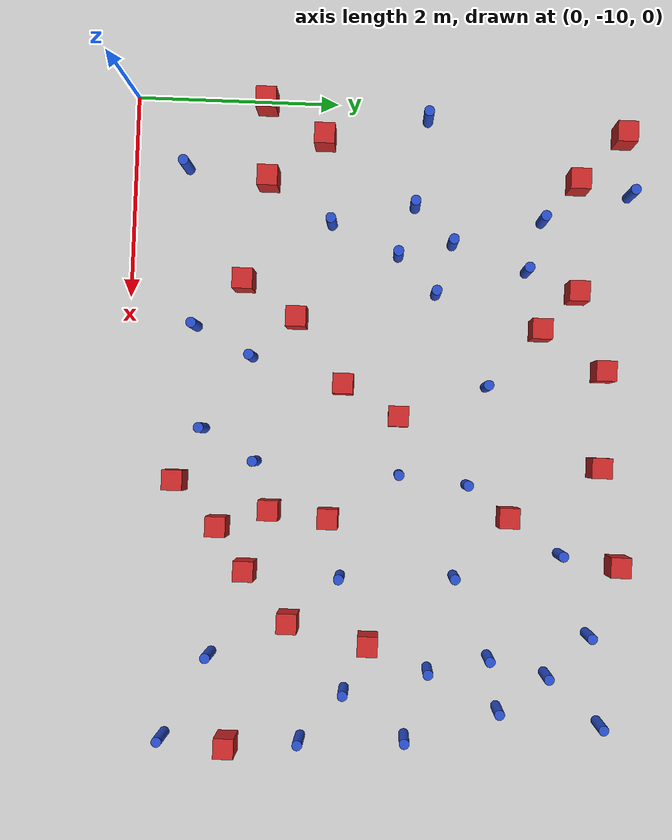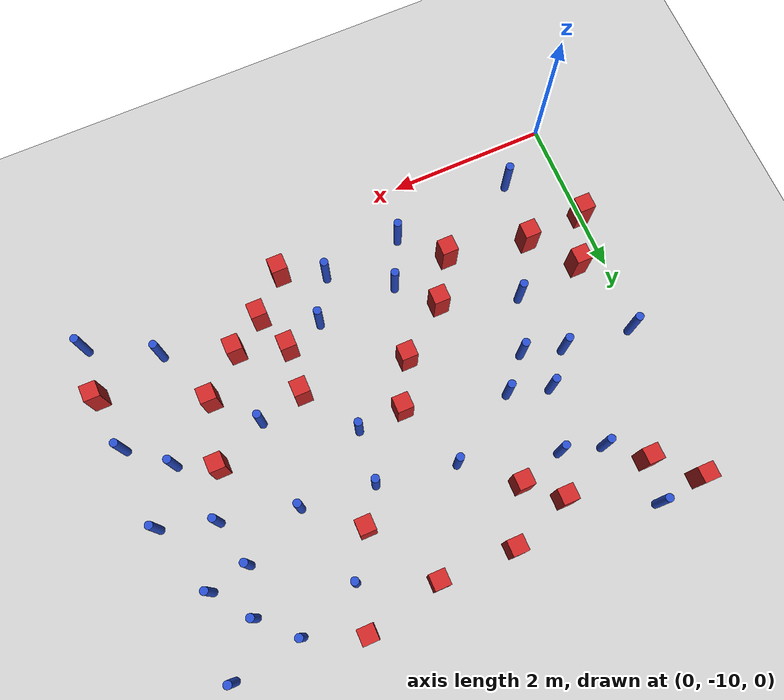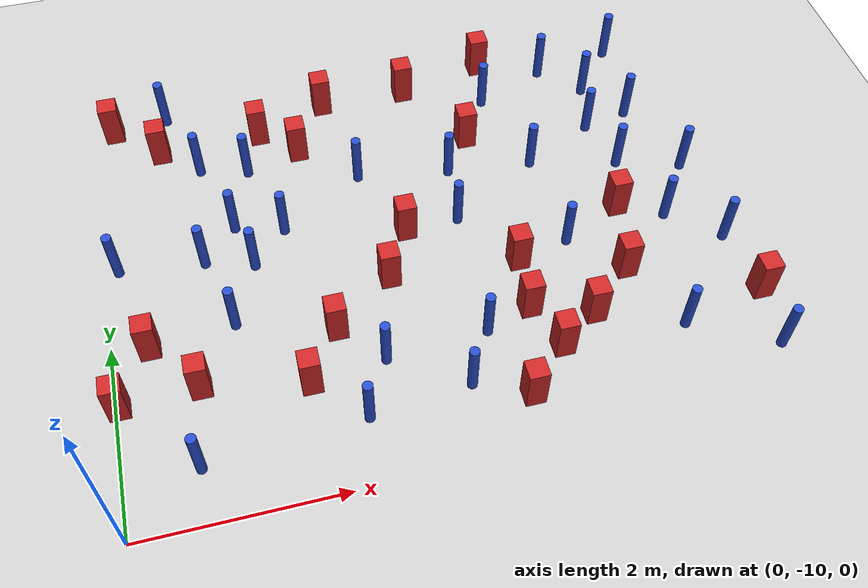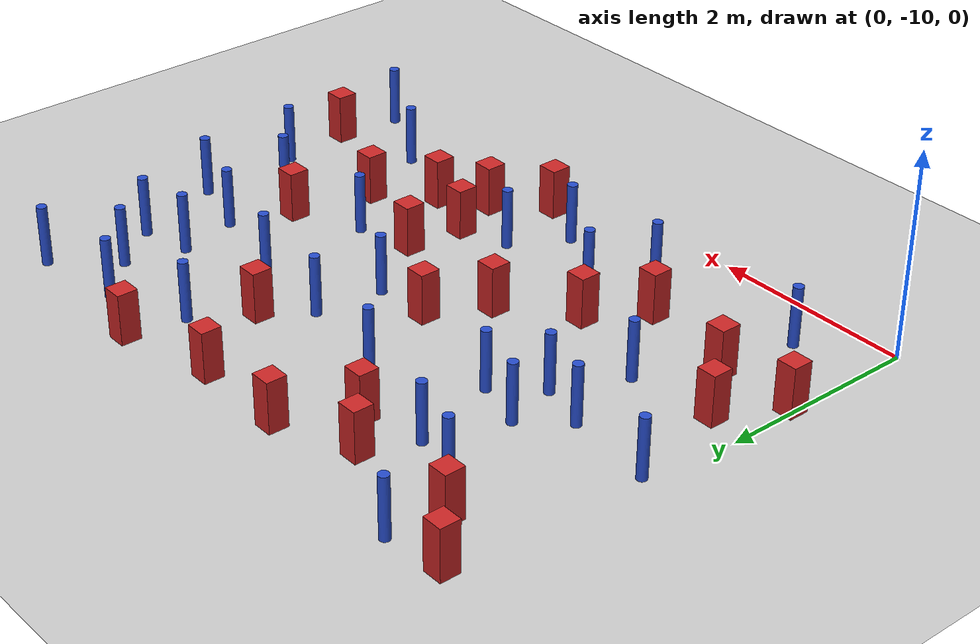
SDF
<sdf version="1.6">
 <world name="default">
  <model name="ground_plane">
   <static>1</static>
   <link name="link">
    <collision name="collision">
     <geometry><plane><normal>0 0 1</normal><size>100 100</size></plane></geometry>
     <surface><friction><ode><mu>100</mu><mu2>50</mu2></ode></friction></surface>
    </collision>
    <visual name="visual">
     <cast_shadows>0</cast_shadows>
     <geometry><plane><normal>0 0 1</normal><size>100 100</size></plane></geometry>
     <material>
      <ambient>1.0 1.0 1.0 1.0</ambient>
      <diffuse>0.8 0.8 0.8 1.0</diffuse>
      <specular>0.01 0.01 0.01 1.000000</specular>
     </material>
    </visual>
   </link>
  </model>
  <model name="pole_obstacle2">
   <static>true</static>
   <pose>5.58116646436 -6.90500801666 7.38925637345e-09 -8.47170692796e-08 1.24976764786e-08 -1.74513093032e-07</pose>
   <link name="link">
    <pose>0 0 0.3 0 -0 0</pose>
    <inertial>
     <mass>1</mass>
     <inertia><ixx>0.145833</ixx><ixy>0</ixy><ixz>0</ixz><iyy>0.145833</iyy><iyz>0</iyz><izz>0.125</izz></inertia>
    </inertial>
    <collision name="collision">
     <geometry><cylinder><radius>0.05</radius><length>.6</length></cylinder></geometry>
    </collision>
    <visual name="visual">
     <geometry><cylinder><radius>0.05</radius><length>.6</length></cylinder></geometry>
     <material>
      <script><name>Gazebo/Blue</name><uri>file://media/materials/scripts/gazebo.material</uri></script>
     </material>
    </visual>
   </link>
  </model>
  <model name="pole_obstacle7">
   <static>true</static>
   <pose>5.17682240041 -5.33551856168 7.38925637345e-09 -8.47170692796e-08 1.24976764786e-08 -1.74513093032e-07</pose>
   <link name="link">
    <pose>0 0 0.3 0 -0 0</pose>
    <inertial>
     <mass>1</mass>
     <inertia><ixx>0.145833</ixx><ixy>0</ixy><ixz>0</ixz><iyy>0.145833</iyy><iyz>0</iyz><izz>0.125</izz></inertia>
    </inertial>
    <collision name="collision">
     <geometry><cylinder><radius>0.05</radius><length>.6</length></cylinder></geometry>
    </collision>
    <visual name="visual">
     <geometry><cylinder><radius>0.05</radius><length>.6</length></cylinder></geometry>
     <material>
      <script><name>Gazebo/Blue</name><uri>file://media/materials/scripts/gazebo.material</uri></script>
     </material>
    </visual>
   </link>
  </model>
  <model name="pole_obstacle9">
   <static>true</static>
   <pose>5.81578536251 -7.72304774756 7.38925637345e-09 -8.47170692796e-08 1.24976764786e-08 -1.74513093032e-07</pose>
   <link name="link">
    <pose>0 0 0.3 0 -0 0</pose>
    <inertial>
     <mass>1</mass>
     <inertia><ixx>0.145833</ixx><ixy>0</ixy><ixz>0</ixz><iyy>0.145833</iyy><iyz>0</iyz><izz>0.125</izz></inertia>
    </inertial>
    <collision name="collision">
     <geometry><cylinder><radius>0.05</radius><length>.6</length></cylinder></geometry>
    </collision>
    <visual name="visual">
     <geometry><cylinder><radius>0.05</radius><length>.6</length></cylinder></geometry>
     <material>
      <script><name>Gazebo/Blue</name><uri>file://media/materials/scripts/gazebo.material</uri></script>
     </material>
    </visual>
   </link>
  </model>
  <model name="pole_obstacle12">
   <static>true</static>
   <pose>3.67191027739 -7.25729127321 7.38925637345e-09 -8.47170692798e-08 1.24976765033e-08 -1.74513093019e-07</pose>
   <link name="link">
    <pose>0 0 0.3 0 -0 0</pose>
    <inertial>
     <mass>1</mass>
     <inertia><ixx>0.145833</ixx><ixy>0</ixy><ixz>0</ixz><iyy>0.145833</iyy><iyz>0</iyz><izz>0.125</izz></inertia>
    </inertial>
    <collision name="collision">
     <geometry><cylinder><radius>0.05</radius><length>.6</length></cylinder></geometry>
    </collision>
    <visual name="visual">
     <geometry><cylinder><radius>0.05</radius><length>.6</length></cylinder></geometry>
     <material>
      <script><name>Gazebo/Blue</name><uri>file://media/materials/scripts/gazebo.material</uri></script>
     </material>
    </visual>
   </link>
  </model>
  <model name="pole_obstacle21">
   <static>true</static>
   <pose>1.87104269473 -6.96091129743 7.38925637345e-09 -8.47170692799e-08 1.24976765033e-08 -1.74513093018e-07</pose>
   <link name="link">
    <pose>0 0 0.3 0 -0 0</pose>
    <inertial>
     <mass>1</mass>
     <inertia><ixx>0.145833</ixx><ixy>0</ixy><ixz>0</ixz><iyy>0.145833</iyy><iyz>0</iyz><izz>0.125</izz></inertia>
    </inertial>
    <collision name="collision">
     <geometry><cylinder><radius>0.05</radius><length>.6</length></cylinder></geometry>
    </collision>
    <visual name="visual">
     <geometry><cylinder><radius>0.05</radius><length>.6</length></cylinder></geometry>
     <material>
      <script><name>Gazebo/Blue</name><uri>file://media/materials/scripts/gazebo.material</uri></script>
     </material>
    </visual>
   </link>
  </model>
  <model name="square_post_obstacle33">
   <static>true</static>
   <pose>3.53055788666 -5.28912433252 1.91545236811e-07 -7.35059704564e-06 1.12565212e-07 2.39332434364e-05</pose>
   <link name="link">
    <pose>0 0 0.25 0 -0 0</pose>
    <inertial>
     <mass>100</mass>
     <inertia>
      <ixx>0.166667</ixx>
      <ixy>0</ixy>
      <ixz>0</ixz>
      <iyy>0.166667</iyy>
      <iyz>0</iyz>
      <izz>0.166667</izz>
     </inertia>
    </inertial>
    <collision name="collision"><geometry><box><size>.2 .2 .5</size></box></geometry></collision>
    <visual name="visual">
     <geometry><box><size>.2 .2 .5</size></box></geometry>
     <material>
      <script><name>Gazebo/Red</name><uri>file://media/materials/scripts/gazebo.material</uri></script>
     </material>
    </visual>
   </link>
  </model>
  <model name="pole_obstacle37">
   <static>true</static>
   <pose>1.36823733643 -6.81389044042 7.38925637345e-09 -8.47170692799e-08 1.24976765033e-08 -1.74513093018e-07</pose>
   <link name="link">
    <pose>0 0 0.3 0 -0 0</pose>
    <inertial>
     <mass>1</mass>
     <inertia><ixx>0.145833</ixx><ixy>0</ixy><ixz>0</ixz><iyy>0.145833</iyy><iyz>0</iyz><izz>0.125</izz></inertia>
    </inertial>
    <collision name="collision">
     <geometry><cylinder><radius>0.05</radius><length>.6</length></cylinder></geometry>
    </collision>
    <visual name="visual">
     <geometry><cylinder><radius>0.05</radius><length>.6</length></cylinder></geometry>
     <material>
      <script><name>Gazebo/Blue</name><uri>file://media/materials/scripts/gazebo.material</uri></script>
     </material>
    </visual>
   </link>
  </model>
  <model name="square_post_obstacle41">
   <static>true</static>
   <pose>0.240563237475 -5.1569229616 1.91545236811e-07 -7.35059704564e-06 1.12565212e-07 2.39332434364e-05</pose>
   <link name="link">
    <pose>0 0 0.25 0 -0 0</pose>
    <inertial>
     <mass>100</mass>
     <inertia>
      <ixx>0.166667</ixx>
      <ixy>0</ixy>
      <ixz>0</ixz>
      <iyy>0.166667</iyy>
      <iyz>0</iyz>
      <izz>0.166667</izz>
     </inertia>
    </inertial>
    <collision name="collision"><geometry><box><size>.2 .2 .5</size></box></geometry></collision>
    <visual name="visual">
     <geometry><box><size>.2 .2 .5</size></box></geometry>
     <material>
      <script><name>Gazebo/Red</name><uri>file://media/materials/scripts/gazebo.material</uri></script>
     </material>
    </visual>
   </link>
  </model>
  <model name="square_post_obstacle45">
   <static>true</static>
   <pose>2.16445532617 -8.32171729761 1.91545236811e-07 -7.35059704564e-06 1.12565212e-07 2.39332434364e-05</pose>
   <link name="link">
    <pose>0 0 0.25 0 -0 0</pose>
    <inertial>
     <mass>100</mass>
     <inertia>
      <ixx>0.166667</ixx>
      <ixy>0</ixy>
      <ixz>0</ixz>
      <iyy>0.166667</iyy>
      <iyz>0</iyz>
      <izz>0.166667</izz>
     </inertia>
    </inertial>
    <collision name="collision"><geometry><box><size>.2 .2 .5</size></box></geometry></collision>
    <visual name="visual">
     <geometry><box><size>.2 .2 .5</size></box></geometry>
     <material>
      <script><name>Gazebo/Red</name><uri>file://media/materials/scripts/gazebo.material</uri></script>
     </material>
    </visual>
   </link>
  </model>
  <model name="pole_obstacle48">
   <static>true</static>
   <pose>1.20997205393 -8.01390607306 7.38925637345e-09 -8.47170692794e-08 1.24976764551e-08 -1.74513093044e-07</pose>
   <link name="link">
    <pose>0 0 0.3 0 -0 0</pose>
    <inertial>
     <mass>1</mass>
     <inertia><ixx>0.145833</ixx><ixy>0</ixy><ixz>0</ixz><iyy>0.145833</iyy><iyz>0</iyz><izz>0.125</izz></inertia>
    </inertial>
    <collision name="collision">
     <geometry><cylinder><radius>0.05</radius><length>.6</length></cylinder></geometry>
    </collision>
    <visual name="visual">
     <geometry><cylinder><radius>0.05</radius><length>.6</length></cylinder></geometry>
     <material>
      <script><name>Gazebo/Blue</name><uri>file://media/materials/scripts/gazebo.material</uri></script>
     </material>
    </visual>
   </link>
  </model>
  <model name="pole_obstacle51">
   <static>true</static>
   <pose>4.65511370809 -6.67889860376 7.38925637345e-09 -8.47170692796e-08 1.24976764786e-08 -1.74513093032e-07</pose>
   <link name="link">
    <pose>0 0 0.3 0 -0 0</pose>
    <inertial>
     <mass>1</mass>
     <inertia><ixx>0.145833</ixx><ixy>0</ixy><ixz>0</ixz><iyy>0.145833</iyy><iyz>0</iyz><izz>0.125</izz></inertia>
    </inertial>
    <collision name="collision">
     <geometry><cylinder><radius>0.05</radius><length>.6</length></cylinder></geometry>
    </collision>
    <visual name="visual">
     <geometry><cylinder><radius>0.05</radius><length>.6</length></cylinder></geometry>
     <material>
      <script><name>Gazebo/Blue</name><uri>file://media/materials/scripts/gazebo.material</uri></script>
     </material>
    </visual>
   </link>
  </model>
  <model name="pole_obstacle52">
   <static>true</static>
   <pose>1.61405642815 -6.07192503614 7.38925637345e-09 -8.47170692799e-08 1.24976765033e-08 -1.74513093018e-07</pose>
   <link name="link">
    <pose>0 0 0.3 0 -0 0</pose>
    <inertial>
     <mass>1</mass>
     <inertia><ixx>0.145833</ixx><ixy>0</ixy><ixz>0</ixz><iyy>0.145833</iyy><iyz>0</iyz><izz>0.125</izz></inertia>
    </inertial>
    <collision name="collision">
     <geometry><cylinder><radius>0.05</radius><length>.6</length></cylinder></geometry>
    </collision>
    <visual name="visual">
     <geometry><cylinder><radius>0.05</radius><length>.6</length></cylinder></geometry>
     <material>
      <script><name>Gazebo/Blue</name><uri>file://media/materials/scripts/gazebo.material</uri></script>
     </material>
    </visual>
   </link>
  </model>
  <model name="square_post_obstacle61">
   <static>true</static>
   <pose>5.34747033582 -7.50090982426 1.91545236811e-07 -7.35059704564e-06 1.12565212e-07 2.39332434364e-05</pose>
   <link name="link">
    <pose>0 0 0.25 0 -0 0</pose>
    <inertial>
     <mass>100</mass>
     <inertia>
      <ixx>0.166667</ixx>
      <ixy>0</ixy>
      <ixz>0</ixz>
      <iyy>0.166667</iyy>
      <iyz>0</iyz>
      <izz>0.166667</izz>
     </inertia>
    </inertial>
    <collision name="collision"><geometry><box><size>.2 .2 .5</size></box></geometry></collision>
    <visual name="visual">
     <geometry><box><size>.2 .2 .5</size></box></geometry>
     <material>
      <script><name>Gazebo/Red</name><uri>file://media/materials/scripts/gazebo.material</uri></script>
     </material>
    </visual>
   </link>
  </model>
  <model name="pole_obstacle58">
   <static>true</static>
   <pose>2.77067635116 -6.4252747511 7.38925637345e-09 -8.47170692798e-08 1.24976765033e-08 -1.74513093019e-07</pose>
   <link name="link">
    <pose>0 0 0.3 0 -0 0</pose>
    <inertial>
     <mass>1</mass>
     <inertia><ixx>0.145833</ixx><ixy>0</ixy><ixz>0</ixz><iyy>0.145833</iyy><iyz>0</iyz><izz>0.125</izz></inertia>
    </inertial>
    <collision name="collision">
     <geometry><cylinder><radius>0.05</radius><length>.6</length></cylinder></geometry>
    </collision>
    <visual name="visual">
     <geometry><cylinder><radius>0.05</radius><length>.6</length></cylinder></geometry>
     <material>
      <script><name>Gazebo/Blue</name><uri>file://media/materials/scripts/gazebo.material</uri></script>
     </material>
    </visual>
   </link>
  </model>
  <model name="pole_obstacle67">
   <static>true</static>
   <pose>3.7478950699 -6.58423467968 7.38925637345e-09 -8.47170692798e-08 1.24976765033e-08 -1.74513093019e-07</pose>
   <link name="link">
    <pose>0 0 0.3 0 -0 0</pose>
    <inertial>
     <mass>1</mass>
     <inertia><ixx>0.145833</ixx><ixy>0</ixy><ixz>0</ixz><iyy>0.145833</iyy><iyz>0</iyz><izz>0.125</izz></inertia>
    </inertial>
    <collision name="collision">
     <geometry><cylinder><radius>0.05</radius><length>.6</length></cylinder></geometry>
    </collision>
    <visual name="visual">
     <geometry><cylinder><radius>0.05</radius><length>.6</length></cylinder></geometry>
     <material>
      <script><name>Gazebo/Blue</name><uri>file://media/materials/scripts/gazebo.material</uri></script>
     </material>
    </visual>
   </link>
  </model>
  <model name="square_post_obstacle72">
   <static>true</static>
   <pose>4.12764143469 -7.93884715635 1.91545236811e-07 -7.35059704564e-06 1.12565212e-07 2.39332434364e-05</pose>
   <link name="link">
    <pose>0 0 0.25 0 -0 0</pose>
    <inertial>
     <mass>100</mass>
     <inertia>
      <ixx>0.166667</ixx>
      <ixy>0</ixy>
      <ixz>0</ixz>
      <iyy>0.166667</iyy>
      <iyz>0</iyz>
      <izz>0.166667</izz>
     </inertia>
    </inertial>
    <collision name="collision"><geometry><box><size>.2 .2 .5</size></box></geometry></collision>
    <visual name="visual">
     <geometry><box><size>.2 .2 .5</size></box></geometry>
     <material>
      <script><name>Gazebo/Red</name><uri>file://media/materials/scripts/gazebo.material</uri></script>
     </material>
    </visual>
   </link>
  </model>
  <model name="pole_obstacle72">
   <static>true</static>
   <pose>6.04989582428 -5.19460261238 7.38925637345e-09 -8.47170692796e-08 1.24976764786e-08 -1.74513093032e-07</pose>
   <link name="link">
    <pose>0 0 0.3 0 -0 0</pose>
    <inertial>
     <mass>1</mass>
     <inertia><ixx>0.145833</ixx><ixy>0</ixy><ixz>0</ixz><iyy>0.145833</iyy><iyz>0</iyz><izz>0.125</izz></inertia>
    </inertial>
    <collision name="collision">
     <geometry><cylinder><radius>0.05</radius><length>.6</length></cylinder></geometry>
    </collision>
    <visual name="visual">
     <geometry><cylinder><radius>0.05</radius><length>.6</length></cylinder></geometry>
     <material>
      <script><name>Gazebo/Blue</name><uri>file://media/materials/scripts/gazebo.material</uri></script>
     </material>
    </visual>
   </link>
  </model>
  <model name="pole_obstacle81">
   <static>true</static>
   <pose>6.32546712629 -9.49495715269 7.38925637345e-09 -8.471706928e-08 1.24976765081e-08 -1.74513093015e-07</pose>
   <link name="link">
    <pose>0 0 0.3 0 -0 0</pose>
    <inertial>
     <mass>1</mass>
     <inertia><ixx>0.145833</ixx><ixy>0</ixy><ixz>0</ixz><iyy>0.145833</iyy><iyz>0</iyz><izz>0.125</izz></inertia>
    </inertial>
    <collision name="collision">
     <geometry><cylinder><radius>0.05</radius><length>.6</length></cylinder></geometry>
    </collision>
    <visual name="visual">
     <geometry><cylinder><radius>0.05</radius><length>.6</length></cylinder></geometry>
     <material>
      <script><name>Gazebo/Blue</name><uri>file://media/materials/scripts/gazebo.material</uri></script>
     </material>
    </visual>
   </link>
  </model>
  <model name="pole_obstacle85">
   <static>true</static>
   <pose>4.39669901683 -5.6426793888 7.38925637345e-09 -8.47170692796e-08 1.24976764786e-08 -1.74513093032e-07</pose>
   <link name="link">
    <pose>0 0 0.3 0 -0 0</pose>
    <inertial>
     <mass>1</mass>
     <inertia><ixx>0.145833</ixx><ixy>0</ixy><ixz>0</ixz><iyy>0.145833</iyy><iyz>0</iyz><izz>0.125</izz></inertia>
    </inertial>
    <collision name="collision">
     <geometry><cylinder><radius>0.05</radius><length>.6</length></cylinder></geometry>
    </collision>
    <visual name="visual">
     <geometry><cylinder><radius>0.05</radius><length>.6</length></cylinder></geometry>
     <material>
      <script><name>Gazebo/Blue</name><uri>file://media/materials/scripts/gazebo.material</uri></script>
     </material>
    </visual>
   </link>
  </model>
  <model name="pole_obstacle88">
   <static>true</static>
   <pose>5.50503893143 -9.05986063166 7.38925637345e-09 -8.471706928e-08 1.24976765081e-08 -1.74513093015e-07</pose>
   <link name="link">
    <pose>0 0 0.3 0 -0 0</pose>
    <inertial>
     <mass>1</mass>
     <inertia><ixx>0.145833</ixx><ixy>0</ixy><ixz>0</ixz><iyy>0.145833</iyy><iyz>0</iyz><izz>0.125</izz></inertia>
    </inertial>
    <collision name="collision">
     <geometry><cylinder><radius>0.05</radius><length>.6</length></cylinder></geometry>
    </collision>
    <visual name="visual">
     <geometry><cylinder><radius>0.05</radius><length>.6</length></cylinder></geometry>
     <material>
      <script><name>Gazebo/Blue</name><uri>file://media/materials/scripts/gazebo.material</uri></script>
     </material>
    </visual>
   </link>
  </model>
  <model name="square_post_obstacle96">
   <static>true</static>
   <pose>4.06630741562 -8.52020843506 1.91545236811e-07 -7.35059704564e-06 1.12565212e-07 2.39332434364e-05</pose>
   <link name="link">
    <pose>0 0 0.25 0 -0 0</pose>
    <inertial>
     <mass>100</mass>
     <inertia>
      <ixx>0.166667</ixx>
      <ixy>0</ixy>
      <ixz>0</ixz>
      <iyy>0.166667</iyy>
      <iyz>0</iyz>
      <izz>0.166667</izz>
     </inertia>
    </inertial>
    <collision name="collision"><geometry><box><size>.2 .2 .5</size></box></geometry></collision>
    <visual name="visual">
     <geometry><box><size>.2 .2 .5</size></box></geometry>
     <material>
      <script><name>Gazebo/Red</name><uri>file://media/materials/scripts/gazebo.material</uri></script>
     </material>
    </visual>
   </link>
  </model>
  <model name="pole_obstacle109">
   <static>true</static>
   <pose>0.822252012917 -5.07539163171 7.38925637345e-09 -8.471706928e-08 1.24976765086e-08 -1.74513093015e-07</pose>
   <link name="link">
    <pose>0 0 0.3 0 -0 0</pose>
    <inertial>
     <mass>1</mass>
     <inertia><ixx>0.145833</ixx><ixy>0</ixy><ixz>0</ixz><iyy>0.145833</iyy><iyz>0</iyz><izz>0.125</izz></inertia>
    </inertial>
    <collision name="collision">
     <geometry><cylinder><radius>0.05</radius><length>.6</length></cylinder></geometry>
    </collision>
    <visual name="visual">
     <geometry><cylinder><radius>0.05</radius><length>.6</length></cylinder></geometry>
     <material>
      <script><name>Gazebo/Blue</name><uri>file://media/materials/scripts/gazebo.material</uri></script>
     </material>
    </visual>
   </link>
  </model>
  <model name="square_post_obstacle99">
   <static>true</static>
   <pose>0.371428055004 -8.10973355037 1.91545236811e-07 -7.35059704564e-06 1.12565212e-07 2.39332434364e-05</pose>
   <link name="link">
    <pose>0 0 0.25 0 -0 0</pose>
    <inertial>
     <mass>100</mass>
     <inertia>
      <ixx>0.166667</ixx>
      <ixy>0</ixy>
      <ixz>0</ixz>
      <iyy>0.166667</iyy>
      <iyz>0</iyz>
      <izz>0.166667</izz>
     </inertia>
    </inertial>
    <collision name="collision"><geometry><box><size>.2 .2 .5</size></box></geometry></collision>
    <visual name="visual">
     <geometry><box><size>.2 .2 .5</size></box></geometry>
     <material>
      <script><name>Gazebo/Red</name><uri>file://media/materials/scripts/gazebo.material</uri></script>
     </material>
    </visual>
   </link>
  </model>
  <model name="pole_obstacle117">
   <static>true</static>
   <pose>2.27341174924 -9.32356402539 7.38925637345e-09 -8.47170692793e-08 1.24976764408e-08 -1.74513093041e-07</pose>
   <link name="link">
    <pose>0 0 0.3 0 -0 0</pose>
    <inertial>
     <mass>1</mass>
     <inertia><ixx>0.145833</ixx><ixy>0</ixy><ixz>0</ixz><iyy>0.145833</iyy><iyz>0</iyz><izz>0.125</izz></inertia>
    </inertial>
    <collision name="collision">
     <geometry><cylinder><radius>0.05</radius><length>.6</length></cylinder></geometry>
    </collision>
    <visual name="visual">
     <geometry><cylinder><radius>0.05</radius><length>.6</length></cylinder></geometry>
     <material>
      <script><name>Gazebo/Blue</name><uri>file://media/materials/scripts/gazebo.material</uri></script>
     </material>
    </visual>
   </link>
  </model>
  <model name="square_post_obstacle106">
   <static>true</static>
   <pose>1.81607225525 -8.85521936287 1.91545236811e-07 -7.35059704564e-06 1.12565212e-07 2.39332434364e-05</pose>
   <link name="link">
    <pose>0 0 0.25 0 -0 0</pose>
    <inertial>
     <mass>100</mass>
     <inertia>
      <ixx>0.166667</ixx>
      <ixy>0</ixy>
      <ixz>0</ixz>
      <iyy>0.166667</iyy>
      <iyz>0</iyz>
      <izz>0.166667</izz>
     </inertia>
    </inertial>
    <collision name="collision"><geometry><box><size>.2 .2 .5</size></box></geometry></collision>
    <visual name="visual">
     <geometry><box><size>.2 .2 .5</size></box></geometry>
     <material>
      <script><name>Gazebo/Red</name><uri>file://media/materials/scripts/gazebo.material</uri></script>
     </material>
    </visual>
   </link>
  </model>
  <model name="pole_obstacle121">
   <static>true</static>
   <pose>1.10925168895 -5.9317399072 7.38925637345e-09 -8.47170692799e-08 1.24976765033e-08 -1.74513093018e-07</pose>
   <link name="link">
    <pose>0 0 0.3 0 -0 0</pose>
    <inertial>
     <mass>1</mass>
     <inertia><ixx>0.145833</ixx><ixy>0</ixy><ixz>0</ixz><iyy>0.145833</iyy><iyz>0</iyz><izz>0.125</izz></inertia>
    </inertial>
    <collision name="collision">
     <geometry><cylinder><radius>0.05</radius><length>.6</length></cylinder></geometry>
    </collision>
    <visual name="visual">
     <geometry><cylinder><radius>0.05</radius><length>.6</length></cylinder></geometry>
     <material>
      <script><name>Gazebo/Blue</name><uri>file://media/materials/scripts/gazebo.material</uri></script>
     </material>
    </visual>
   </link>
  </model>
  <model name="pole_obstacle131">
   <static>true</static>
   <pose>3.59179983587 -8.67993259181 7.38925637345e-09 -8.47170692793e-08 1.24976764408e-08 -1.74513093041e-07</pose>
   <link name="link">
    <pose>0 0 0.3 0 -0 0</pose>
    <inertial>
     <mass>1</mass>
     <inertia><ixx>0.145833</ixx><ixy>0</ixy><ixz>0</ixz><iyy>0.145833</iyy><iyz>0</iyz><izz>0.125</izz></inertia>
    </inertial>
    <collision name="collision">
     <geometry><cylinder><radius>0.05</radius><length>.6</length></cylinder></geometry>
    </collision>
    <visual name="visual">
     <geometry><cylinder><radius>0.05</radius><length>.6</length></cylinder></geometry>
     <material>
      <script><name>Gazebo/Blue</name><uri>file://media/materials/scripts/gazebo.material</uri></script>
     </material>
    </visual>
   </link>
  </model>
  <model name="pole_obstacle132">
   <static>true</static>
   <pose>0.140154581477 -7.09949954068 7.38925637345e-09 -8.471706928e-08 1.24976765036e-08 -1.74513093019e-07</pose>
   <link name="link">
    <pose>0 0 0.3 0 -0 0</pose>
    <inertial>
     <mass>1</mass>
     <inertia><ixx>0.145833</ixx><ixy>0</ixy><ixz>0</ixz><iyy>0.145833</iyy><iyz>0</iyz><izz>0.125</izz></inertia>
    </inertial>
    <collision name="collision">
     <geometry><cylinder><radius>0.05</radius><length>.6</length></cylinder></geometry>
    </collision>
    <visual name="visual">
     <geometry><cylinder><radius>0.05</radius><length>.6</length></cylinder></geometry>
     <material>
      <script><name>Gazebo/Blue</name><uri>file://media/materials/scripts/gazebo.material</uri></script>
     </material>
    </visual>
   </link>
  </model>
  <model name="pole_obstacle133">
   <static>true</static>
   <pose>3.28522788337 -9.21168829783 7.38925637345e-09 -8.47170692793e-08 1.24976764408e-08 -1.74513093041e-07</pose>
   <link name="link">
    <pose>0 0 0.3 0 -0 0</pose>
    <inertial>
     <mass>1</mass>
     <inertia><ixx>0.145833</ixx><ixy>0</ixy><ixz>0</ixz><iyy>0.145833</iyy><iyz>0</iyz><izz>0.125</izz></inertia>
    </inertial>
    <collision name="collision">
     <geometry><cylinder><radius>0.05</radius><length>.6</length></cylinder></geometry>
    </collision>
    <visual name="visual">
     <geometry><cylinder><radius>0.05</radius><length>.6</length></cylinder></geometry>
     <material>
      <script><name>Gazebo/Blue</name><uri>file://media/materials/scripts/gazebo.material</uri></script>
     </material>
    </visual>
   </link>
  </model>
  <model name="square_post_obstacle121">
   <static>true</static>
   <pose>2.19581400358 -5.91708203789 1.91545236811e-07 -7.35059704564e-06 1.12565212e-07 2.39332434364e-05</pose>
   <link name="link">
    <pose>0 0 0.25 0 -0 0</pose>
    <inertial>
     <mass>100</mass>
     <inertia>
      <ixx>0.166667</ixx>
      <ixy>0</ixy>
      <ixz>0</ixz>
      <iyy>0.166667</iyy>
      <iyz>0</iyz>
      <izz>0.166667</izz>
     </inertia>
    </inertial>
    <collision name="collision"><geometry><box><size>.2 .2 .5</size></box></geometry></collision>
    <visual name="visual">
     <geometry><box><size>.2 .2 .5</size></box></geometry>
     <material>
      <script><name>Gazebo/Red</name><uri>file://media/materials/scripts/gazebo.material</uri></script>
     </material>
    </visual>
   </link>
  </model>
  <model name="pole_obstacle141">
   <static>true</static>
   <pose>1.50383730809 -7.34526910906 7.38925637345e-09 -8.47170692799e-08 1.24976765033e-08 -1.74513093018e-07</pose>
   <link name="link">
    <pose>0 0 0.3 0 -0 0</pose>
    <inertial>
     <mass>1</mass>
     <inertia><ixx>0.145833</ixx><ixy>0</ixy><ixz>0</ixz><iyy>0.145833</iyy><iyz>0</iyz><izz>0.125</izz></inertia>
    </inertial>
    <collision name="collision">
     <geometry><cylinder><radius>0.05</radius><length>.6</length></cylinder></geometry>
    </collision>
    <visual name="visual">
     <geometry><cylinder><radius>0.05</radius><length>.6</length></cylinder></geometry>
     <material>
      <script><name>Gazebo/Blue</name><uri>file://media/materials/scripts/gazebo.material</uri></script>
     </material>
    </visual>
   </link>
  </model>
  <model name="pole_obstacle143">
   <static>true</static>
   <pose>6.25336285344 -7.10867460861 7.38925637345e-09 -8.47170692796e-08 1.24976764786e-08 -1.74513093032e-07</pose>
   <link name="link">
    <pose>0 0 0.3 0 -0 0</pose>
    <inertial>
     <mass>1</mass>
     <inertia><ixx>0.145833</ixx><ixy>0</ixy><ixz>0</ixz><iyy>0.145833</iyy><iyz>0</iyz><izz>0.125</izz></inertia>
    </inertial>
    <collision name="collision">
     <geometry><cylinder><radius>0.05</radius><length>.6</length></cylinder></geometry>
    </collision>
    <visual name="visual">
     <geometry><cylinder><radius>0.05</radius><length>.6</length></cylinder></geometry>
     <material>
      <script><name>Gazebo/Blue</name><uri>file://media/materials/scripts/gazebo.material</uri></script>
     </material>
    </visual>
   </link>
  </model>
  <model name="pole_obstacle157">
   <static>true</static>
   <pose>4.69871820493 -7.80396606182 7.38925637345e-09 -8.47170692796e-08 1.24976764786e-08 -1.74513093032e-07</pose>
   <link name="link">
    <pose>0 0 0.3 0 -0 0</pose>
    <inertial>
     <mass>1</mass>
     <inertia><ixx>0.145833</ixx><ixy>0</ixy><ixz>0</ixz><iyy>0.145833</iyy><iyz>0</iyz><izz>0.125</izz></inertia>
    </inertial>
    <collision name="collision">
     <geometry><cylinder><radius>0.05</radius><length>.6</length></cylinder></geometry>
    </collision>
    <visual name="visual">
     <geometry><cylinder><radius>0.05</radius><length>.6</length></cylinder></geometry>
     <material>
      <script><name>Gazebo/Blue</name><uri>file://media/materials/scripts/gazebo.material</uri></script>
     </material>
    </visual>
   </link>
  </model>
  <model name="square_post_obstacle156">
   <static>true</static>
   <pose>3.10064598541 -7.28489385495 1.91545236811e-07 -7.35059704564e-06 1.12565212e-07 2.39332434364e-05</pose>
   <link name="link">
    <pose>0 0 0.25 0 -0 0</pose>
    <inertial>
     <mass>100</mass>
     <inertia>
      <ixx>0.166667</ixx>
      <ixy>0</ixy>
      <ixz>0</ixz>
      <iyy>0.166667</iyy>
      <iyz>0</iyz>
      <izz>0.166667</izz>
     </inertia>
    </inertial>
    <collision name="collision"><geometry><box><size>.2 .2 .5</size></box></geometry></collision>
    <visual name="visual">
     <geometry><box><size>.2 .2 .5</size></box></geometry>
     <material>
      <script><name>Gazebo/Red</name><uri>file://media/materials/scripts/gazebo.material</uri></script>
     </material>
    </visual>
   </link>
  </model>
  <model name="square_post_obstacle157">
   <static>true</static>
   <pose>3.8058825315 -9.46126749365 1.91545236811e-07 -7.35059704564e-06 1.12565212e-07 2.39332434364e-05</pose>
   <link name="link">
    <pose>0 0 0.25 0 -0 0</pose>
    <inertial>
     <mass>100</mass>
     <inertia>
      <ixx>0.166667</ixx>
      <ixy>0</ixy>
      <ixz>0</ixz>
      <iyy>0.166667</iyy>
      <iyz>0</iyz>
      <izz>0.166667</izz>
     </inertia>
    </inertial>
    <collision name="collision"><geometry><box><size>.2 .2 .5</size></box></geometry></collision>
    <visual name="visual">
     <geometry><box><size>.2 .2 .5</size></box></geometry>
     <material>
      <script><name>Gazebo/Red</name><uri>file://media/materials/scripts/gazebo.material</uri></script>
     </material>
    </visual>
   </link>
  </model>
  <model name="square_post_obstacle158">
   <static>true</static>
   <pose>2.80190245111 -7.83843416716 1.91545236811e-07 -7.35059704564e-06 1.12565212e-07 2.39332434364e-05</pose>
   <link name="link">
    <pose>0 0 0.25 0 -0 0</pose>
    <inertial>
     <mass>100</mass>
     <inertia>
      <ixx>0.166667</ixx>
      <ixy>0</ixy>
      <ixz>0</ixz>
      <iyy>0.166667</iyy>
      <iyz>0</iyz>
      <izz>0.166667</izz>
     </inertia>
    </inertial>
    <collision name="collision"><geometry><box><size>.2 .2 .5</size></box></geometry></collision>
    <visual name="visual">
     <geometry><box><size>.2 .2 .5</size></box></geometry>
     <material>
      <script><name>Gazebo/Red</name><uri>file://media/materials/scripts/gazebo.material</uri></script>
     </material>
    </visual>
   </link>
  </model>
  <model name="square_post_obstacle161">
   <static>true</static>
   <pose>4.66603447248 -8.73655362493 1.91545236811e-07 -7.35059704564e-06 1.12565212e-07 2.39332434364e-05</pose>
   <link name="link">
    <pose>0 0 0.25 0 -0 0</pose>
    <inertial>
     <mass>100</mass>
     <inertia>
      <ixx>0.166667</ixx>
      <ixy>0</ixy>
      <ixz>0</ixz>
      <iyy>0.166667</iyy>
      <iyz>0</iyz>
      <izz>0.166667</izz>
     </inertia>
    </inertial>
    <collision name="collision"><geometry><box><size>.2 .2 .5</size></box></geometry></collision>
    <visual name="visual">
     <geometry><box><size>.2 .2 .5</size></box></geometry>
     <material>
      <script><name>Gazebo/Red</name><uri>file://media/materials/scripts/gazebo.material</uri></script>
     </material>
    </visual>
   </link>
  </model>
  <model name="square_post_obstacle162">
   <static>true</static>
   <pose>0.717757743638 -5.59631395357 1.91545236811e-07 -7.35059704564e-06 1.12565212e-07 2.39332434364e-05</pose>
   <link name="link">
    <pose>0 0 0.25 0 -0 0</pose>
    <inertial>
     <mass>100</mass>
     <inertia>
      <ixx>0.166667</ixx>
      <ixy>0</ixy>
      <ixz>0</ixz>
      <iyy>0.166667</iyy>
      <iyz>0</iyz>
      <izz>0.166667</izz>
     </inertia>
    </inertial>
    <collision name="collision"><geometry><box><size>.2 .2 .5</size></box></geometry></collision>
    <visual name="visual">
     <geometry><box><size>.2 .2 .5</size></box></geometry>
     <material>
      <script><name>Gazebo/Red</name><uri>file://media/materials/scripts/gazebo.material</uri></script>
     </material>
    </visual>
   </link>
  </model>
  <model name="pole_obstacle175">
   <static>true</static>
   <pose>0.70503833397 -9.46022703577 7.38925637345e-09 -8.47170692797e-08 1.249767648e-08 -1.74513093032e-07</pose>
   <link name="link">
    <pose>0 0 0.3 0 -0 0</pose>
    <inertial>
     <mass>1</mass>
     <inertia><ixx>0.145833</ixx><ixy>0</ixy><ixz>0</ixz><iyy>0.145833</iyy><iyz>0</iyz><izz>0.125</izz></inertia>
    </inertial>
    <collision name="collision">
     <geometry><cylinder><radius>0.05</radius><length>.6</length></cylinder></geometry>
    </collision>
    <visual name="visual">
     <geometry><cylinder><radius>0.05</radius><length>.6</length></cylinder></geometry>
     <material>
      <script><name>Gazebo/Blue</name><uri>file://media/materials/scripts/gazebo.material</uri></script>
     </material>
    </visual>
   </link>
  </model>
  <model name="pole_obstacle177">
   <static>true</static>
   <pose>5.58342325315 -5.73807691008 7.38925637345e-09 -8.47170692796e-08 1.24976764786e-08 -1.74513093032e-07</pose>
   <link name="link">
    <pose>0 0 0.3 0 -0 0</pose>
    <inertial>
     <mass>1</mass>
     <inertia><ixx>0.145833</ixx><ixy>0</ixy><ixz>0</ixz><iyy>0.145833</iyy><iyz>0</iyz><izz>0.125</izz></inertia>
    </inertial>
    <collision name="collision">
     <geometry><cylinder><radius>0.05</radius><length>.6</length></cylinder></geometry>
    </collision>
    <visual name="visual">
     <geometry><cylinder><radius>0.05</radius><length>.6</length></cylinder></geometry>
     <material>
      <script><name>Gazebo/Blue</name><uri>file://media/materials/scripts/gazebo.material</uri></script>
     </material>
    </visual>
   </link>
  </model>
  <model name="square_post_obstacle169">
   <static>true</static>
   <pose>6.38707011376 -8.85868448636 1.91545236811e-07 -7.35059704564e-06 1.12565212e-07 2.39332434364e-05</pose>
   <link name="link">
    <pose>0 0 0.25 0 -0 0</pose>
    <inertial>
     <mass>100</mass>
     <inertia>
      <ixx>0.166667</ixx>
      <ixy>0</ixy>
      <ixz>0</ixz>
      <iyy>0.166667</iyy>
      <iyz>0</iyz>
      <izz>0.166667</izz>
     </inertia>
    </inertial>
    <collision name="collision"><geometry><box><size>.2 .2 .5</size></box></geometry></collision>
    <visual name="visual">
     <geometry><box><size>.2 .2 .5</size></box></geometry>
     <material>
      <script><name>Gazebo/Red</name><uri>file://media/materials/scripts/gazebo.material</uri></script>
     </material>
    </visual>
   </link>
  </model>
  <model name="pole_obstacle184">
   <static>true</static>
   <pose>5.93907149297 -6.20257531767 7.38925637345e-09 -8.47170692796e-08 1.24976764786e-08 -1.74513093032e-07</pose>
   <link name="link">
    <pose>0 0 0.3 0 -0 0</pose>
    <inertial>
     <mass>1</mass>
     <inertia><ixx>0.145833</ixx><ixy>0</ixy><ixz>0</ixz><iyy>0.145833</iyy><iyz>0</iyz><izz>0.125</izz></inertia>
    </inertial>
    <collision name="collision">
     <geometry><cylinder><radius>0.05</radius><length>.6</length></cylinder></geometry>
    </collision>
    <visual name="visual">
     <geometry><cylinder><radius>0.05</radius><length>.6</length></cylinder></geometry>
     <material>
      <script><name>Gazebo/Blue</name><uri>file://media/materials/scripts/gazebo.material</uri></script>
     </material>
    </visual>
   </link>
  </model>
  <model name="square_post_obstacle173">
   <static>true</static>
   <pose>0.801542028164 -8.65223991708 1.91545236811e-07 -7.35059704564e-06 1.12565212e-07 2.39332434364e-05</pose>
   <link name="link">
    <pose>0 0 0.25 0 -0 0</pose>
    <inertial>
     <mass>100</mass>
     <inertia>
      <ixx>0.166667</ixx>
      <ixy>0</ixy>
      <ixz>0</ixz>
      <iyy>0.166667</iyy>
      <iyz>0</iyz>
      <izz>0.166667</izz>
     </inertia>
    </inertial>
    <collision name="collision"><geometry><box><size>.2 .2 .5</size></box></geometry></collision>
    <visual name="visual">
     <geometry><box><size>.2 .2 .5</size></box></geometry>
     <material>
      <script><name>Gazebo/Red</name><uri>file://media/materials/scripts/gazebo.material</uri></script>
     </material>
    </visual>
   </link>
  </model>
  <model name="square_post_obstacle185">
   <static>true</static>
   <pose>5.15735446348 -8.29489981752 1.91545236811e-07 -7.35059704564e-06 1.12565212e-07 2.39332434364e-05</pose>
   <link name="link">
    <pose>0 0 0.25 0 -0 0</pose>
    <inertial>
     <mass>100</mass>
     <inertia>
      <ixx>0.166667</ixx>
      <ixy>0</ixy>
      <ixz>0</ixz>
      <iyy>0.166667</iyy>
      <iyz>0</iyz>
      <izz>0.166667</izz>
     </inertia>
    </inertial>
    <collision name="collision"><geometry><box><size>.2 .2 .5</size></box></geometry></collision>
    <visual name="visual">
     <geometry><box><size>.2 .2 .5</size></box></geometry>
     <material>
      <script><name>Gazebo/Red</name><uri>file://media/materials/scripts/gazebo.material</uri></script>
     </material>
    </visual>
   </link>
  </model>
  <model name="square_post_obstacle193">
   <static>true</static>
   <pose>1.81297078046 -5.569130049 1.91545236811e-07 -7.35059704564e-06 1.12565212e-07 2.39332434364e-05</pose>
   <link name="link">
    <pose>0 0 0.25 0 -0 0</pose>
    <inertial>
     <mass>100</mass>
     <inertia>
      <ixx>0.166667</ixx>
      <ixy>0</ixy>
      <ixz>0</ixz>
      <iyy>0.166667</iyy>
      <iyz>0</iyz>
      <izz>0.166667</izz>
     </inertia>
    </inertial>
    <collision name="collision"><geometry><box><size>.2 .2 .5</size></box></geometry></collision>
    <visual name="visual">
     <geometry><box><size>.2 .2 .5</size></box></geometry>
     <material>
      <script><name>Gazebo/Red</name><uri>file://media/materials/scripts/gazebo.material</uri></script>
     </material>
    </visual>
   </link>
  </model>
  <model name="square_post_obstacle195">
   <static>true</static>
   <pose>2.58184036014 -5.28036784746 1.91545236811e-07 -7.35059704564e-06 1.12565212e-07 2.39332434364e-05</pose>
   <link name="link">
    <pose>0 0 0.25 0 -0 0</pose>
    <inertial>
     <mass>100</mass>
     <inertia>
      <ixx>0.166667</ixx>
      <ixy>0</ixy>
      <ixz>0</ixz>
      <iyy>0.166667</iyy>
      <iyz>0</iyz>
      <izz>0.166667</izz>
     </inertia>
    </inertial>
    <collision name="collision"><geometry><box><size>.2 .2 .5</size></box></geometry></collision>
    <visual name="visual">
     <geometry><box><size>.2 .2 .5</size></box></geometry>
     <material>
      <script><name>Gazebo/Red</name><uri>file://media/materials/scripts/gazebo.material</uri></script>
     </material>
    </visual>
   </link>
  </model>
  <model name="square_post_obstacle199">
   <static>true</static>
   <pose>4.05092970854 -6.16793552104 1.91545236811e-07 -7.35059704564e-06 1.12565212e-07 2.39332434364e-05</pose>
   <link name="link">
    <pose>0 0 0.25 0 -0 0</pose>
    <inertial>
     <mass>100</mass>
     <inertia>
      <ixx>0.166667</ixx>
      <ixy>0</ixy>
      <ixz>0</ixz>
      <iyy>0.166667</iyy>
      <iyz>0</iyz>
      <izz>0.166667</izz>
     </inertia>
    </inertial>
    <collision name="collision"><geometry><box><size>.2 .2 .5</size></box></geometry></collision>
    <visual name="visual">
     <geometry><box><size>.2 .2 .5</size></box></geometry>
     <material>
      <script><name>Gazebo/Red</name><uri>file://media/materials/scripts/gazebo.material</uri></script>
     </material>
    </visual>
   </link>
  </model>
  <model name="square_post_obstacle200">
   <static>true</static>
   <pose>4.48892808552 -5.07008092764 1.91545236811e-07 -7.35059704564e-06 1.12565212e-07 2.39332434364e-05</pose>
   <link name="link">
    <pose>0 0 0.25 0 -0 0</pose>
    <inertial>
     <mass>100</mass>
     <inertia>
      <ixx>0.166667</ixx>
      <ixy>0</ixy>
      <ixz>0</ixz>
      <iyy>0.166667</iyy>
      <iyz>0</iyz>
      <izz>0.166667</izz>
     </inertia>
    </inertial>
    <collision name="collision"><geometry><box><size>.2 .2 .5</size></box></geometry></collision>
    <visual name="visual">
     <geometry><box><size>.2 .2 .5</size></box></geometry>
     <material>
      <script><name>Gazebo/Red</name><uri>file://media/materials/scripts/gazebo.material</uri></script>
     </material>
    </visual>
   </link>
  </model>
  <model name="square_post_obstacle202">
   <static>true</static>
   <pose>4.24367513756 -9.02398750984 1.91545236811e-07 -7.35059704564e-06 1.12565212e-07 2.39332434364e-05</pose>
   <link name="link">
    <pose>0 0 0.25 0 -0 0</pose>
    <inertial>
     <mass>100</mass>
     <inertia>
      <ixx>0.166667</ixx>
      <ixy>0</ixy>
      <ixz>0</ixz>
      <iyy>0.166667</iyy>
      <iyz>0</iyz>
      <izz>0.166667</izz>
     </inertia>
    </inertial>
    <collision name="collision"><geometry><box><size>.2 .2 .5</size></box></geometry></collision>
    <visual name="visual">
     <geometry><box><size>.2 .2 .5</size></box></geometry>
     <material>
      <script><name>Gazebo/Red</name><uri>file://media/materials/scripts/gazebo.material</uri></script>
     </material>
    </visual>
   </link>
  </model>
  <model name="pole_obstacle190">
   <static>true</static>
   <pose>2.55964858839 -8.7545580021 7.38925637345e-09 -8.47170692793e-08 1.24976764408e-08 -1.74513093041e-07</pose>
   <link name="link">
    <pose>0 0 0.3 0 -0 0</pose>
    <inertial>
     <mass>1</mass>
     <inertia><ixx>0.145833</ixx><ixy>0</ixy><ixz>0</ixz><iyy>0.145833</iyy><iyz>0</iyz><izz>0.125</izz></inertia>
    </inertial>
    <collision name="collision">
     <geometry><cylinder><radius>0.05</radius><length>.6</length></cylinder></geometry>
    </collision>
    <visual name="visual">
     <geometry><cylinder><radius>0.05</radius><length>.6</length></cylinder></geometry>
     <material>
      <script><name>Gazebo/Blue</name><uri>file://media/materials/scripts/gazebo.material</uri></script>
     </material>
    </visual>
   </link>
  </model>
  <model name="square_post_obstacle206">
   <static>true</static>
   <pose>0.0388685766526 -8.69369934429 1.91545236811e-07 -7.35059704564e-06 1.12565212e-07 2.39332434364e-05</pose>
   <link name="link">
    <pose>0 0 0.25 0 -0 0</pose>
    <inertial>
     <mass>100</mass>
     <inertia>
      <ixx>0.166667</ixx>
      <ixy>0</ixy>
      <ixz>0</ixz>
      <iyy>0.166667</iyy>
      <iyz>0</iyz>
      <izz>0.166667</izz>
     </inertia>
    </inertial>
    <collision name="collision"><geometry><box><size>.2 .2 .5</size></box></geometry></collision>
    <visual name="visual">
     <geometry><box><size>.2 .2 .5</size></box></geometry>
     <material>
      <script><name>Gazebo/Red</name><uri>file://media/materials/scripts/gazebo.material</uri></script>
     </material>
    </visual>
   </link>
  </model>
  <model name="pole_obstacle199">
   <static>true</static>
   <pose>1.0100455357 -7.19774462498 7.38925637345e-09 -8.47170692799e-08 1.24976765021e-08 -1.74513093019e-07</pose>
   <link name="link">
    <pose>0 0 0.3 0 -0 0</pose>
    <inertial>
     <mass>1</mass>
     <inertia><ixx>0.145833</ixx><ixy>0</ixy><ixz>0</ixz><iyy>0.145833</iyy><iyz>0</iyz><izz>0.125</izz></inertia>
    </inertial>
    <collision name="collision">
     <geometry><cylinder><radius>0.05</radius><length>.6</length></cylinder></geometry>
    </collision>
    <visual name="visual">
     <geometry><cylinder><radius>0.05</radius><length>.6</length></cylinder></geometry>
     <material>
      <script><name>Gazebo/Blue</name><uri>file://media/materials/scripts/gazebo.material</uri></script>
     </material>
    </visual>
   </link>
  </model>
  <model name="pole_obstacle207">
   <static>true</static>
   <pose>6.30594214173 -8.13984456538 7.38925637345e-09 -8.471706928e-08 1.24976765081e-08 -1.74513093015e-07</pose>
   <link name="link">
    <pose>0 0 0.3 0 -0 0</pose>
    <inertial>
     <mass>1</mass>
     <inertia><ixx>0.145833</ixx><ixy>0</ixy><ixz>0</ixz><iyy>0.145833</iyy><iyz>0</iyz><izz>0.125</izz></inertia>
    </inertial>
    <collision name="collision">
     <geometry><cylinder><radius>0.05</radius><length>.6</length></cylinder></geometry>
    </collision>
    <visual name="visual">
     <geometry><cylinder><radius>0.05</radius><length>.6</length></cylinder></geometry>
     <material>
      <script><name>Gazebo/Blue</name><uri>file://media/materials/scripts/gazebo.material</uri></script>
     </material>
    </visual>
   </link>
  </model>
  <model name="pole_obstacle210">
   <static>true</static>
   <pose>5.43534352185 -6.31169706495 7.38925637345e-09 -8.47170692796e-08 1.24976764786e-08 -1.74513093032e-07</pose>
   <link name="link">
    <pose>0 0 0.3 0 -0 0</pose>
    <inertial>
     <mass>1</mass>
     <inertia><ixx>0.145833</ixx><ixy>0</ixy><ixz>0</ixz><iyy>0.145833</iyy><iyz>0</iyz><izz>0.125</izz></inertia>
    </inertial>
    <collision name="collision">
     <geometry><cylinder><radius>0.05</radius><length>.6</length></cylinder></geometry>
    </collision>
    <visual name="visual">
     <geometry><cylinder><radius>0.05</radius><length>.6</length></cylinder></geometry>
     <material>
      <script><name>Gazebo/Blue</name><uri>file://media/materials/scripts/gazebo.material</uri></script>
     </material>
    </visual>
   </link>
  </model>
 </world>
</sdf>
